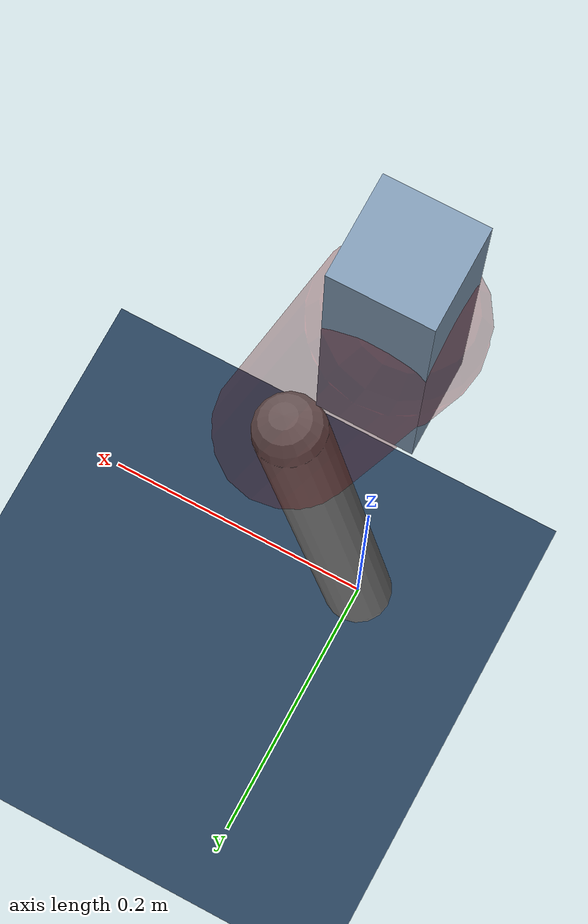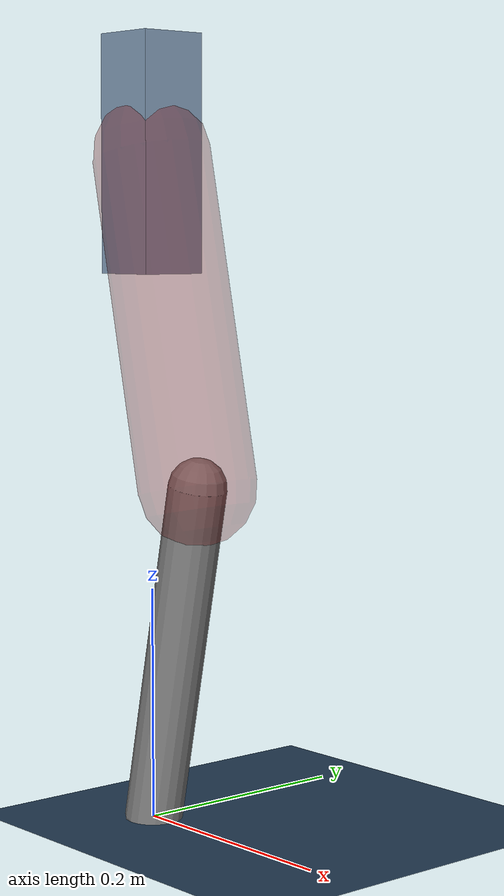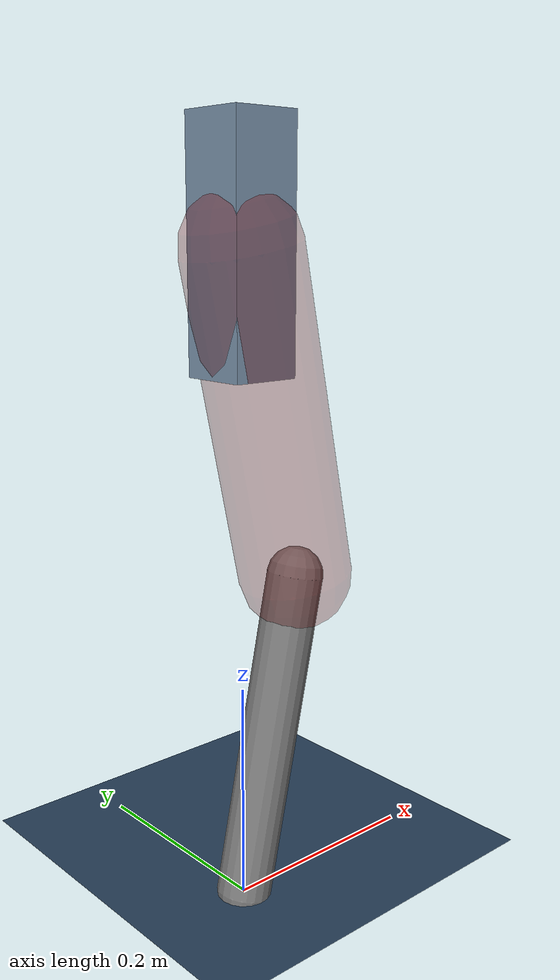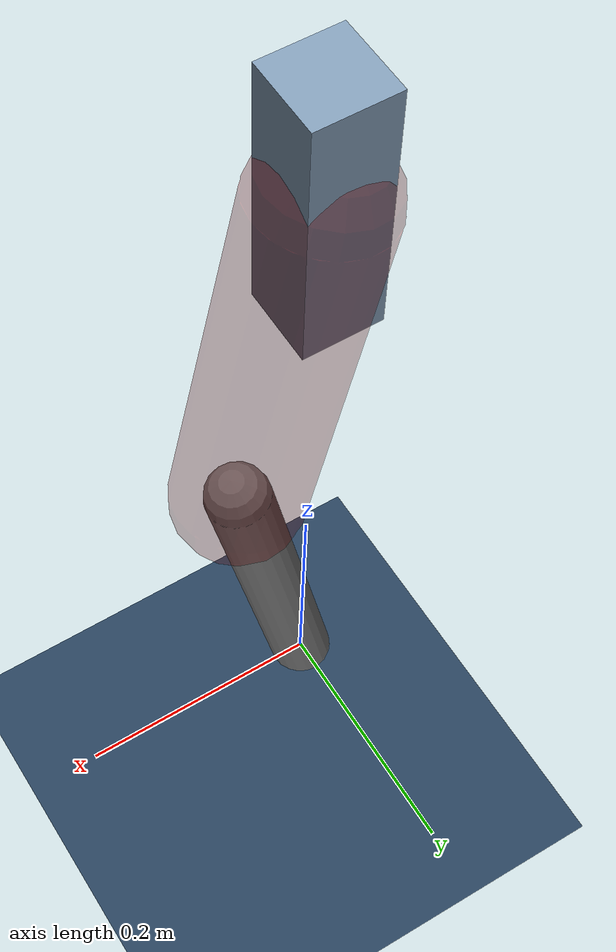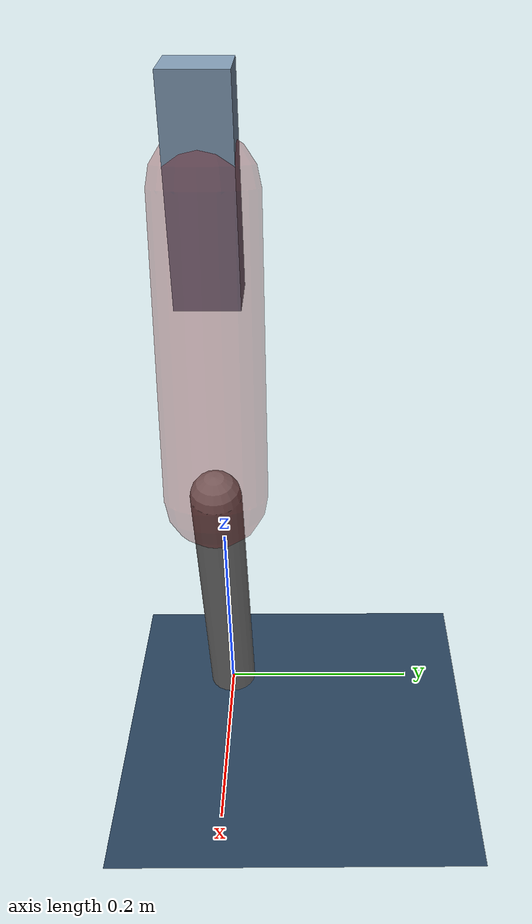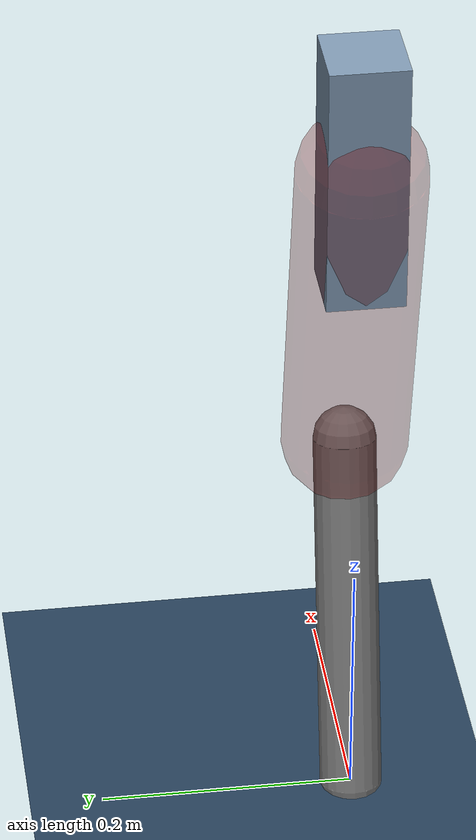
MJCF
<mujoco model="Hopper2D">
	<compiler inertiafromgeom="true" angle="radian" />
	<option timestep="0.001" integrator="implicit" cone="elliptic" solver="Newton" tolerance="1e-10" />

	<default>
		<geom contype="1" conaffinity="1" condim="3" friction="2 0.005 0.0001" solref="0.005 1" />
		<joint limited="true" damping="0.1" />
	</default>

	<asset>
		<texture name="skybox" type="skybox" builtin="gradient" rgb1=".4 .6 .8" rgb2="0 0 0" width="800" height="800" />
		<texture name="grid" type="2d" builtin="checker" rgb1=".1 .2 .3" rgb2=".2 .3 .4" width="300" height="300" mark="edge" markrgb=".2 .3 .4" />
		<material name="ground" texture="grid" texrepeat="1 1" texuniform="true" reflectance="0.1" />
		<material name="leg" rgba="0.5 0.6 0.7 1" />
	</asset>

	<worldbody>

		<geom name="floor" type="plane" size="5 5 0.25" material="ground" />

		<light directional="false" diffuse="0.8 0.8 0.8" specular="0.3 0.3 0.3" pos="0 0 2" dir="0 0 -1" />
		<light mode="targetbodycom" target="base" directional="false" diffuse="0.8 0.8 0.8" specular="0.3 0.3 0.3" pos="0 0 2" dir="0 0 -1" />

		<camera name="fixed" pos="0 -2 1" xyaxes="1 0 0 0 0 1" />
		<camera name="tracking" mode="trackcom" pos="0 -3 1" />

		<body name="root" pos="0 0 0.5703333599810785">
			<joint name="slide_x" type="slide" axis="1 0 0" range="-100 100" />
			<joint name="slide_z" type="slide" axis="0 0 1" range="0 10" />

			<body name="base" pos="0 0 0">
				<geom name="torso" type="box" size="0.03 0.03 0.1" mass="2.5869999999999997" material="leg" />

				<body name="link1" pos="0 0 0" euler="0 1.3559767864359276 0">
					<joint type="hinge" axis="0 -1 0" pos="0 0 0" name="hinge1" limited="true" range="-3.14 3.14" stiffness="0" damping="0.1" />
					<geom name="thigh" type="capsule" fromto="0 0 0 0.28311948533094006 0 0" size="0.05" rgba="0.5 0 0 0.3" mass="0.9434226103935383" />

					<body name="link2" pos="0.28311948533094006 0 0" euler="0 0.4174755417541763 0">
						<joint type="hinge" axis="0 -1 0" pos="0 0 0" name="hinge2" limited="true" range="-3.14 3.14" stiffness="0" damping="0.1" />
						<geom name="shank" type="capsule" fromto="0 0 0 0.2998578649022586 0 0" size="0.025" mass="0.4832862919218069" />

					</body>
				</body>
			</body>
		</body>
	</worldbody>

	<actuator>
		<motor name="torque1" joint="hinge1" ctrlrange="-47.79794950508971 47.79794950508971" ctrllimited="true" gear="1" />
		<motor name="torque2" joint="hinge2" ctrlrange="-118.48176578730629 118.48176578730629" ctrllimited="true" gear="1" />
	</actuator>
</mujoco>
